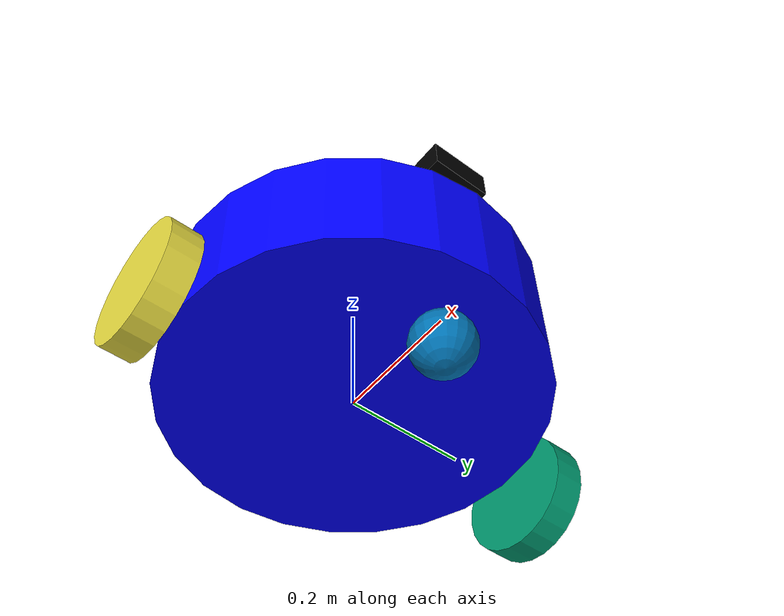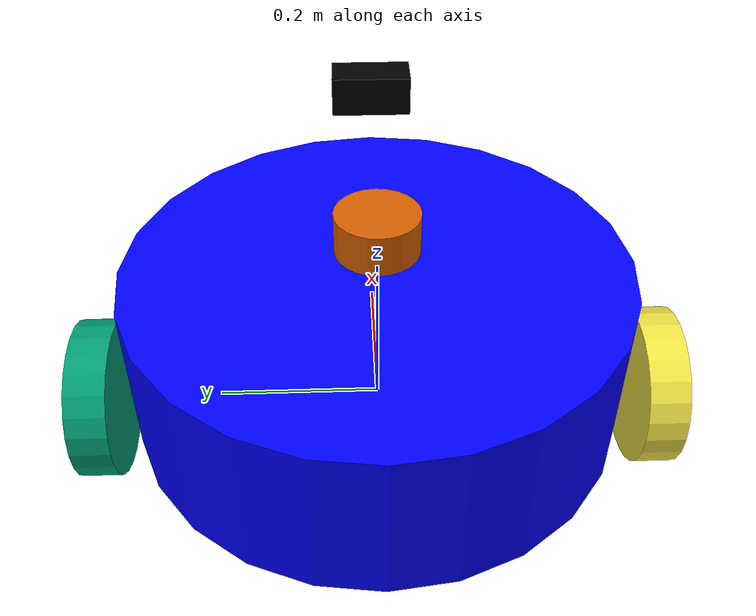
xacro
<?xml version="1.0"?>
<robot name="campus_robot" xmlns:xacro="http://ros.org/wiki/xacro">

  <link name="base_footprint"/>

  <joint name="base_joint" type="fixed">
    <parent link="base_footprint"/>
    <child link="base_link"/>
    <origin xyz="0 0 0.1" rpy="0 0 0"/>
  </joint>

  <link name="base_link">
    <visual>
      <geometry>
        <cylinder radius="0.3" length="0.2"/>
      </geometry>
      <material name="blue">
        <color rgba="0 0 1 1"/>
      </material>
    </visual>
    <collision>
      <geometry>
        <cylinder radius="0.3" length="0.2"/>
      </geometry>
    </collision>
    <inertial>
      <origin xyz="0.1 0 0" rpy="0 0 0"/>
      <mass value="10.0"/>
      <inertia ixx="0.1" ixy="0" ixz="0" iyy="0.1" iyz="0" izz="0.1"/>
    </inertial>
  </link>

  <!-- Left Wheel -->
  <link name="left_wheel">
    <visual>
      <geometry>
        <cylinder radius="0.1" length="0.05"/>
      </geometry>
    </visual>
    <collision>
      <geometry>
        <cylinder radius="0.1" length="0.05"/>
      </geometry>
    </collision>
    <inertial>
      <mass value="1.0"/>
      <inertia ixx="0.01" ixy="0" ixz="0" iyy="0.01" iyz="0" izz="0.01"/>
    </inertial>
  </link>

  <joint name="left_wheel_joint" type="continuous">
    <parent link="base_link"/>
    <child link="left_wheel"/>
    <origin xyz="0 0.35 -0.1" rpy="-1.570796 0 0"/>
    <axis xyz="0 0 1"/>
  </joint>

  <!-- Right Wheel -->
  <link name="right_wheel">
    <visual>
      <geometry>
        <cylinder radius="0.1" length="0.05"/>
      </geometry>
    </visual>
    <collision>
      <geometry>
        <cylinder radius="0.1" length="0.05"/>
      </geometry>
    </collision>
    <inertial>
      <mass value="1.0"/>
      <inertia ixx="0.01" ixy="0" ixz="0" iyy="0.01" iyz="0" izz="0.01"/>
    </inertial>
  </link>

  <joint name="right_wheel_joint" type="continuous">
    <parent link="base_link"/>
    <child link="right_wheel"/>
    <origin xyz="0 -0.35 -0.1" rpy="-1.570796 0 0"/>
    <axis xyz="0 0 1"/>
  </joint>

  <!-- Front Caster Wheel -->
  <link name="caster_wheel">
    <visual>
      <geometry>
        <sphere radius="0.05"/>
      </geometry>
    </visual>
    <collision>
      <geometry>
        <sphere radius="0.05"/>
      </geometry>
    </collision>
    <inertial>
      <mass value="0.5"/>
      <inertia ixx="0.001" ixy="0" ixz="0" iyy="0.001" iyz="0" izz="0.001"/>
    </inertial>
  </link>

  <joint name="caster_wheel_joint" type="fixed">
    <parent link="base_link"/>
    <child link="caster_wheel"/>
    <origin xyz="0.2 0 -0.15" rpy="0 0 0"/>
  </joint>

  <gazebo reference="caster_wheel">
    <mu1>0.0</mu1>
    <mu2>0.0</mu2>
  </gazebo>

  <!-- Lidar -->
  <link name="laser_link">
    <visual>
      <geometry>
        <cylinder radius="0.05" length="0.05"/>
      </geometry>
    </visual>
    <collision>
      <geometry>
        <cylinder radius="0.05" length="0.05"/>
      </geometry>
    </collision>
    <inertial>
      <mass value="0.1"/>
      <inertia ixx="0.0001" ixy="0" ixz="0" iyy="0.0001" iyz="0" izz="0.0001"/>
    </inertial>
  </link>

  <joint name="laser_joint" type="fixed">
    <parent link="base_link"/>
    <child link="laser_link"/>
    <origin xyz="0 0 0.15" rpy="0 0 0"/>
  </joint>

  <!-- Depth Camera -->
  <link name="camera_link">
    <visual>
      <geometry>
        <box size="0.05 0.1 0.05"/>
      </geometry>
      <material name="black">
        <color rgba="0 0 0 1"/>
      </material>
    </visual>
    <collision>
      <geometry>
        <box size="0.05 0.1 0.05"/>
      </geometry>
    </collision>
    <inertial>
      <mass value="0.1"/>
      <inertia ixx="0.0001" ixy="0" ixz="0" iyy="0.0001" iyz="0" izz="0.0001"/>
    </inertial>
  </link>

  <joint name="camera_joint" type="fixed">
    <parent link="base_link"/>
    <child link="camera_link"/>
    <!-- Positioned slightly forward and up -->
    <origin xyz="0.25 0 0.2" rpy="0 0 0"/>
  </joint>

  <link name="camera_depth_frame"/>
  <joint name="camera_depth_joint" type="fixed">
    <parent link="camera_link"/>
    <child link="camera_depth_frame"/>
    <!-- Optical frame requires rotation to standard camera frame (Z forward) -->
    <origin xyz="0 0 0" rpy="-1.570796 0 -1.570796"/>
  </joint>

  <!-- IMU -->
  <link name="imu_link"/>
  <joint name="imu_joint" type="fixed">
    <parent link="base_link"/>
    <child link="imu_link"/>
    <origin xyz="0 0 0" rpy="0 0 0"/>
  </joint>

  <!-- Plugins -->
  <gazebo>
    <plugin name="diff_drive_controller" filename="libgazebo_ros_diff_drive.so">
      <update_rate>50</update_rate>
      <left_joint>left_wheel_joint</left_joint>
      <right_joint>right_wheel_joint</right_joint>
      <wheel_separation>0.7</wheel_separation>
      <wheel_diameter>0.2</wheel_diameter>
      <max_wheel_torque>500</max_wheel_torque>
      <max_wheel_acceleration>1.0</max_wheel_acceleration>
      <command_topic>cmd_vel</command_topic>
      <publish_odom>true</publish_odom>
      <publish_odom_tf>true</publish_odom_tf>
      <publish_wheel_tf>false</publish_wheel_tf>
      <odometry_topic>odom</odometry_topic>
      <odometry_frame>odom</odometry_frame>
      <robot_base_frame>base_footprint</robot_base_frame>
    </plugin>
  </gazebo>

  <gazebo reference="laser_link">
    <sensor type="ray" name="laser">
      <pose>0 0 0 0 0 0</pose>
      <visualize>true</visualize>
      <update_rate>10</update_rate>
      <ray>
        <scan>
          <horizontal>
            <samples>360</samples>
            <resolution>1</resolution>
            <min_angle>-3.14159</min_angle>
            <max_angle>3.14159</max_angle>
          </horizontal>
        </scan>
        <range>
          <min>0.12</min>
          <max>15.0</max>
          <resolution>0.015</resolution>
        </range>
      </ray>
      <plugin name="gazebo_ros_laser" filename="libgazebo_ros_ray_sensor.so">
        <ros>
          <remapping>~/out:=scan</remapping>
        </ros>
        <output_type>sensor_msgs/LaserScan</output_type>
        <frame_name>laser_link</frame_name>
      </plugin>
    </sensor>
  </gazebo>

  <gazebo reference="camera_link">
    <sensor type="depth" name="depth_camera">
      <always_on>true</always_on>
      <update_rate>15.0</update_rate>
      <camera name="camera">
        <horizontal_fov>1.5</horizontal_fov>
        <image>
          <width>640</width>
          <height>480</height>
          <format>R8G8B8</format>
        </image>
        <clip>
          <near>0.1</near>
          <far>10.0</far>
        </clip>
      </camera>
      <plugin name="camera_controller" filename="libgazebo_ros_camera.so">
        <ros>
          <remapping>~/out:=camera/depth/image_raw</remapping>
          <remapping>~/points:=camera/depth/points</remapping>
        </ros>
        <camera_name>camera</camera_name>
        <frame_name>camera_depth_frame</frame_name>
        <min_depth>0.1</min_depth>
        <max_depth>10.0</max_depth>
      </plugin>
    </sensor>
  </gazebo>

  <gazebo reference="imu_link">
    <sensor name="imu_sensor" type="imu">
      <plugin filename="libgazebo_ros_imu_sensor.so" name="imu_plugin">
        <ros>
          <remapping>~/out:=imu</remapping>
        </ros>
        <initial_orientation_as_reference>false</initial_orientation_as_reference>
      </plugin>
      <always_on>true</always_on>
      <update_rate>100</update_rate>
      <visualize>true</visualize>
    </sensor>
  </gazebo>

</robot>
